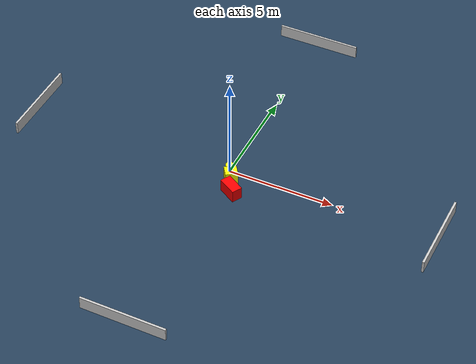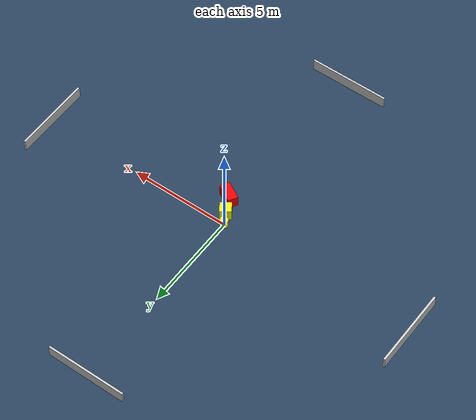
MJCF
<?xml version="1.0" ?>
<mujoco model="generated_environment">
  <option timestep="0.01" integrator="RK4" cone="elliptic"/>
  <default>
    <geom density="1"/>
  </default>
  <asset>
    <texture builtin="gradient" height="3072" name="skybox" rgb1="0.3 0.5 0.7" rgb2="0 0 0" type="skybox" width="512"/>
    <texture builtin="checker" height="300" name="groundplane" rgb1="0.2 0.3 0.4" rgb2="0.1 0.2 0.3" type="2d" width="300"/>
    <material name="groundplane" reflectance="0.2" texrepeat="5 5" texture="groundplane"/>
  </asset>
  <worldbody>
    <light dir="0 0 -1" directional="true" pos="0 0 1.5"/>
    <geom condim="3" friction="0.5 0.005 0.001" material="groundplane" name="floor" pos="0 0 0" size="0 0 0.05" type="plane"/>
    <body name="walls">
      <geom name="wall_1" condim="4" pos="-10.0 0.0 0.3" rgba="0.800000011920929 0.800000011920929 0.800000011920929 1.0" size="0.05 2.0 0.3" type="box"/>
      <geom name="wall_2" condim="4" pos="10.0 0.0 0.3" rgba="0.800000011920929 0.800000011920929 0.800000011920929 1.0" size="0.05 2.0 0.3" type="box"/>
      <geom name="wall_3" condim="4" pos="0.0 -10.0 0.3" rgba="0.800000011920929 0.800000011920929 0.800000011920929 1.0" size="2.0 0.05 0.3" type="box"/>
      <geom name="wall_4" condim="4" pos="0.0 10.0 0.3" rgba="0.800000011920929 0.800000011920929 0.800000011920929 1.0" size="2.0 0.05 0.3" type="box"/>
    </body>
    <body name="robot">
      <joint name="joint_x" type="slide" pos="0 0 0" axis="1 0 0"/>
      <joint name="joint_y" type="slide" pos="0 0 0" axis="0 1 0"/>
      <geom name="robot" type="cylinder" pos="0.0 0.0 0.2" size="0.2 0.2 0.0" mass="5.0" friction="1.0 0.005 0.0001" condim="4" rgba="1.0 1.0 0.0 1.0"/>
    </body>
    <body name="obstacle_1_movable">
      <geom name="obstacle_1_movable" condim="4" pos="0.285250991015581 -0.4934324924018548 0.3" euler="0 0 214.4289349890613" friction="0.0 0.005 0.001" rgba="1.0 1.0 0.0 1.0" size="0.2837193451558432 0.2660981416252135 0.3" type="box" mass="0.1"/>
      <joint type="free"/>
    </body>
    <body name="obstacle_2_static">
      <geom name="obstacle_2_static" condim="4" pos="0.6809582308174229 -1.2804790972837727 0.3" euler="0 0 150.03641159807756" friction="0.0 0.005 0.001" rgba="1.0 0.0 0.0 1.0" size="0.4712717313306112 0.2521105723546502 0.3" type="box"/>
    </body>
  </worldbody>
  <actuator>
    <motor name="actuator_x" joint="joint_x" gear="1" ctrlrange="-1 1"/>
    <motor name="actuator_y" joint="joint_y" gear="1" ctrlrange="-1 1"/>
  </actuator>
</mujoco>
